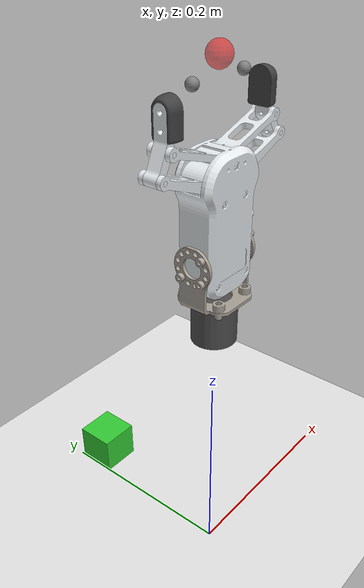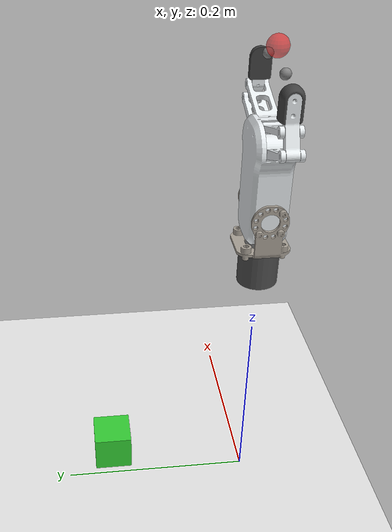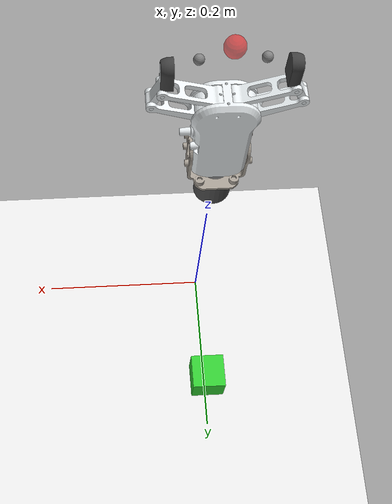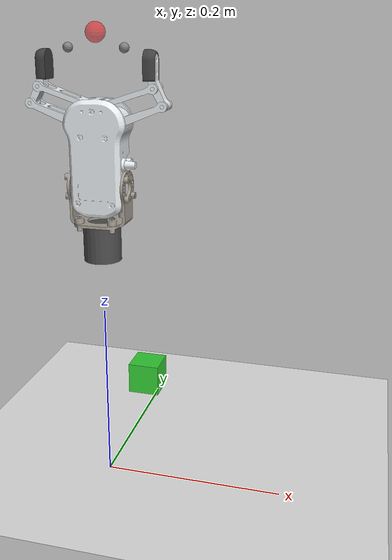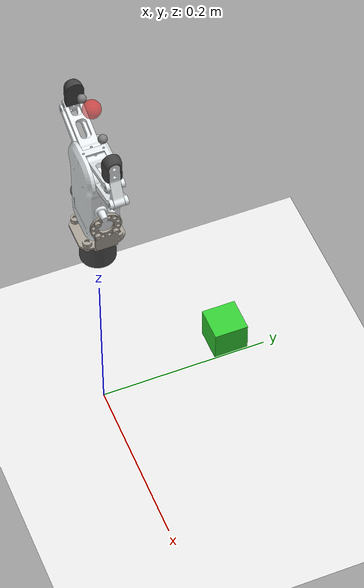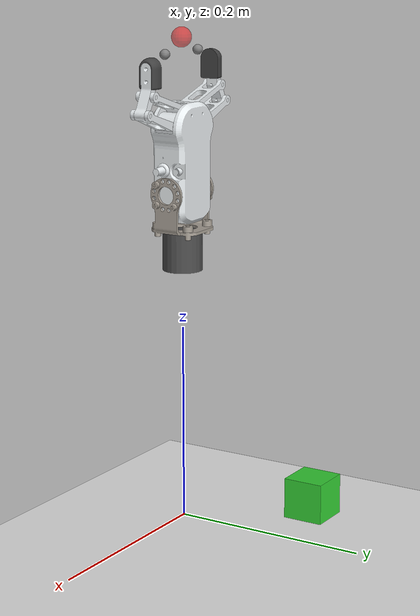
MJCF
<?xml version="1.0" encoding="utf-8"?>
<mujoco model="onrobot_rg2">

    <compiler angle="radian" meshdir="onrobot_ros/onrobot_description/meshes/rg2_v1/visual" eulerseq="xyz"/>

    <option timestep="0.002" gravity="0 0 -9.81" integrator="implicit"/>

    <visual>
        <global offwidth="1280" offheight="960"/>
        <quality shadowsize="4096"/>
    </visual>

    <default>
        <joint damping="0.5" armature="0.01"/>
        <geom contype="1" conaffinity="1" friction="1 0.005 0.0001"/>
        <!-- STL files are already in meters, no scaling needed -->
    </default>

    <asset>
        <!-- Gripper meshes -->
        <mesh name="single_bracket" file="single_bracket.stl"/>
        <mesh name="body" file="body.stl"/>
        <mesh name="moment_arm" file="moment_arm.stl"/>
        <mesh name="truss_arm" file="truss_arm.stl"/>
        <mesh name="finger_tip" file="finger_tip.stl"/>
        <mesh name="flex_finger" file="flex_finger.stl"/>

        <!-- Materials -->
        <material name="grey" rgba="0.65 0.62 0.58 1"/>
        <material name="light_grey" rgba="0.9 0.92 0.93 1"/>
        <material name="dark_grey" rgba="0.25 0.25 0.25 1"/>
    </asset>

    <worldbody>
        <!-- Ground plane -->
        <geom name="floor" type="plane" size="0.5 0.5 0.1" rgba="0.9 0.9 0.9 1"/>
        <light pos="0 0 1.5" dir="0 0 -1" diffuse="1 1 1"/>

        <!-- Gripper mounting point (can be attached to robot arm) -->
        <body name="gripper_mount" pos="0 0 0.3">
            <!-- Fixed base for standalone testing -->
            <geom type="cylinder" size="0.02 0.02" rgba="0.3 0.3 0.3 1" pos="0 0 -0.02"/>

            <!-- Mounting bracket -->
            <body name="gripper_bracket" pos="0 0 0">
                <geom name="bracket_geom" type="mesh" mesh="single_bracket" material="grey"/>

                <!-- Main gripper body -->
                <body name="gripper_body" pos="0 0 0.05">
                    <geom name="body_geom" type="mesh" mesh="body" material="light_grey"/>

                    <!-- FINGER 1 (Master)     -->
                    <body name="finger1_origin" pos="0 0 0" euler="0 0 0">

                        <!-- Moment arm - main actuated joint -->
                        <body name="finger1_moment_arm" pos="-0.017 0 0.055" euler="0 -0.772 0">
                            <inertial pos="0 0 0.02" mass="0.01" diaginertia="0.00001 0.00001 0.00001"/>
                            <joint name="gripper_joint" type="hinge" axis="0 1 0" range="0 1.3"/>
                            <geom name="finger1_moment_geom" type="mesh" mesh="moment_arm" material="light_grey"/>
                        </body>

                        <!-- Truss arm - parallel linkage -->
                        <body name="finger1_truss_arm" pos="-0.0075 0 0.0715" euler="0 -0.772 0">
                            <inertial pos="0 0 0.02" mass="0.01" diaginertia="0.00001 0.00001 0.00001"/>
                            <joint name="finger1_truss_joint" type="hinge" axis="0 1 0" range="0 1.3"/>
                            <geom name="finger1_truss_geom" type="mesh" mesh="truss_arm" material="light_grey"/>

                            <!-- Finger tip -->
                            <body name="finger1_finger_tip" pos="-0.0256 0 0.04868" euler="0 0.772 0">
                                <inertial pos="0 0 0.01" mass="0.01" diaginertia="0.00001 0.00001 0.00001"/>
                                <joint name="finger1_tip_joint" type="hinge" axis="0 -1 0" range="-1.3 0"/>
                                <geom name="finger1_tip_geom" type="mesh" mesh="finger_tip" material="light_grey"/>

                                <!-- Flex finger (fixed to tip) -->
                                <body name="finger1_flex_finger" pos="0.03059 0 0.0172">
                                    <geom name="finger1_flex_geom" type="mesh" mesh="flex_finger" material="dark_grey"/>
                                    <!-- Contact site for grasping -->
                                    <site name="finger1_contact" pos="0 0 0.02" size="0.005"/>
                                </body>
                            </body>
                        </body>
                    </body>

                    <!-- FINGER 2 (Mirror)     -->
                    <body name="finger2_origin" pos="0 0 0" euler="0 0 3.14159">

                        <!-- Moment arm - mirrored -->
                        <body name="finger2_moment_arm" pos="-0.017 0 0.055" euler="0 -0.772 0">
                            <inertial pos="0 0 0.02" mass="0.01" diaginertia="0.00001 0.00001 0.00001"/>
                            <joint name="gripper_mirror_joint" type="hinge" axis="0 1 0" range="0 1.3"/>
                            <geom name="finger2_moment_geom" type="mesh" mesh="moment_arm" material="light_grey"/>
                        </body>

                        <!-- Truss arm - mirrored -->
                        <body name="finger2_truss_arm" pos="-0.0075 0 0.0715" euler="0 -0.772 0">
                            <inertial pos="0 0 0.02" mass="0.01" diaginertia="0.00001 0.00001 0.00001"/>
                            <joint name="finger2_truss_joint" type="hinge" axis="0 1 0" range="0 1.3"/>
                            <geom name="finger2_truss_geom" type="mesh" mesh="truss_arm" material="light_grey"/>

                            <!-- Finger tip - mirrored -->
                            <body name="finger2_finger_tip" pos="-0.0256 0 0.04868" euler="0 0.772 0">
                                <inertial pos="0 0 0.01" mass="0.01" diaginertia="0.00001 0.00001 0.00001"/>
                                <joint name="finger2_tip_joint" type="hinge" axis="0 -1 0" range="-1.3 0"/>
                                <geom name="finger2_tip_geom" type="mesh" mesh="finger_tip" material="light_grey"/>

                                <!-- Flex finger (fixed to tip) -->
                                <body name="finger2_flex_finger" pos="0.03059 0 0.0172">
                                    <geom name="finger2_flex_geom" type="mesh" mesh="flex_finger" material="dark_grey"/>
                                    <!-- Contact site for grasping -->
                                    <site name="finger2_contact" pos="0 0 0.02" size="0.005"/>
                                </body>
                            </body>
                        </body>
                    </body>

                    <!-- Grasp frame (reference point between fingers) -->
                    <site name="grasp_frame" pos="0 0 0.14" size="0.01" rgba="1 0 0 0.5"/>

                </body>
            </body>
        </body>

        <!-- Test object to grasp -->
        <body name="object" pos="0 0.15 0.05">
            <freejoint name="object_free"/>
            <geom name="object_geom" type="box" size="0.02 0.02 0.02"
                  rgba="0.2 0.8 0.2 1" mass="0.05"/>
        </body>
    </worldbody>

    <equality>
        <!-- Mirror joint: finger 2 follows finger 1 -->
        <joint joint1="gripper_joint" joint2="gripper_mirror_joint" polycoef="0 1 0 0 0"/>

        <!-- Finger 1 linkage: truss follows moment arm -->
        <joint joint1="gripper_joint" joint2="finger1_truss_joint" polycoef="0 1 0 0 0"/>

        <!-- Finger 1 linkage: tip counter-rotates (note: negative coefficient due to opposite axis) -->
        <joint joint1="gripper_joint" joint2="finger1_tip_joint" polycoef="0 -1 0 0 0"/>

        <!-- Finger 2 linkage: truss follows moment arm -->
        <joint joint1="gripper_mirror_joint" joint2="finger2_truss_joint" polycoef="0 1 0 0 0"/>

        <!-- Finger 2 linkage: tip counter-rotates -->
        <joint joint1="gripper_mirror_joint" joint2="finger2_tip_joint" polycoef="0 -1 0 0 0"/>
    </equality>

    <!--
        ACTUATOR
        Single position-controlled actuator for the gripper
        ctrlrange: 0 (closed) to 1.0 (open, normalized)
    -->
    <actuator>
        <position name="gripper_ctrl" joint="gripper_joint" kp="100"
                  ctrlrange="0 1.3" forcerange="-40 40"/>
    </actuator>

    <!-- SENSORS -->
    <sensor>
        <jointpos name="gripper_pos" joint="gripper_joint"/>
        <touch name="finger1_touch" site="finger1_contact"/>
        <touch name="finger2_touch" site="finger2_contact"/>
    </sensor>

    <!-- Initial configuration: gripper slightly open -->
    <keyframe>
        <key name="home" qpos="0.3 0.3 0 0.3 0.3 0 0 0.15 0.05 1 0 0 0"/>
    </keyframe>

</mujoco>
